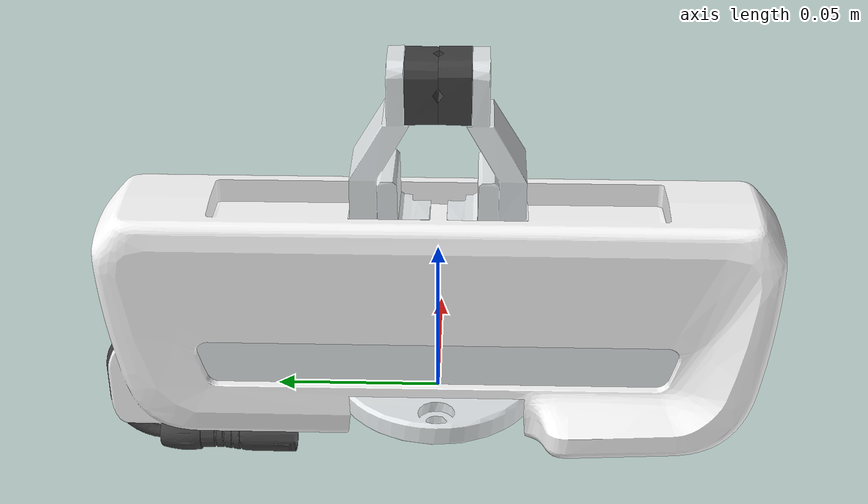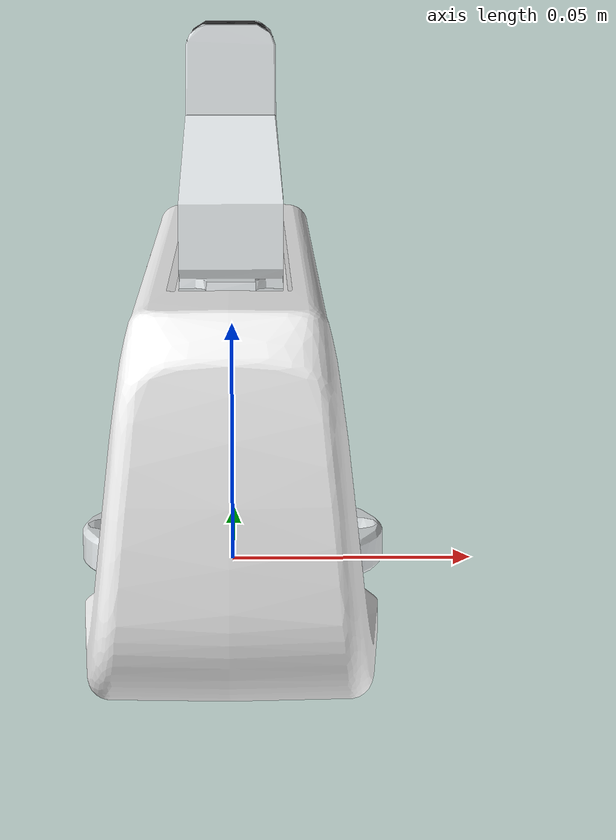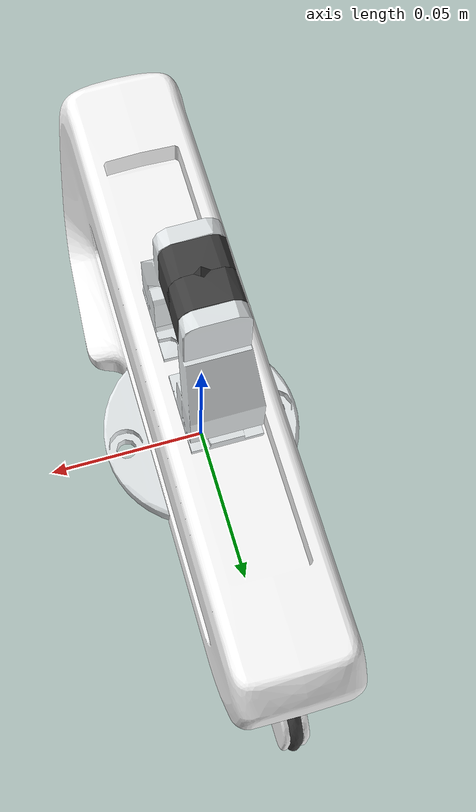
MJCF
<?xml version='1.0' encoding='utf-8'?>
<mujoco model="panda hand">
  <compiler angle="radian" meshdir="assets" autolimits="true" />

  <option integrator="implicitfast" impratio="10" noslip_iterations="3"/>

  <default>
    <default class="panda">
      <material specular="0.5" shininess="0.25" />
      <joint armature="0.1" damping="1" axis="0 0 1" range="-2.8973 2.8973" />
      <general dyntype="none" biastype="affine" ctrlrange="-2.8973 2.8973" forcerange="-87 87" />
      <default class="finger">
        <joint axis="0 1 0" type="slide" range="0 0.04" damping="1.0"/>
      </default>

      <default class="visual">
        <geom type="mesh" contype="0" conaffinity="0" group="2" />
      </default>
      <default class="collision">
        <geom type="mesh" group="3" />
        <default class="fingertip_pad_collision_1">
          <geom type="box" size="0.0085 0.004 0.0085" pos="0 0.0055 0.0445" friction="2.0 0.2 0.01" condim="6"/>
        </default>
        <default class="fingertip_pad_collision_2">
          <geom type="box" size="0.003 0.002 0.003" pos="0.0055 0.002 0.05" friction="2.0 0.2 0.01" condim="6"/>
        </default>
        <default class="fingertip_pad_collision_3">
          <geom type="box" size="0.003 0.002 0.003" pos="-0.0055 0.002 0.05" friction="2.0 0.2 0.01" condim="6" />
        </default>
        <default class="fingertip_pad_collision_4">
          <geom type="box" size="0.003 0.002 0.0035" pos="0.0055 0.002 0.0395" friction="2.0 0.2 0.01" condim="6"/>
        </default>
        <default class="fingertip_pad_collision_5">
          <geom type="box" size="0.003 0.002 0.0035" pos="-0.0055 0.002 0.0395" friction="2.0 0.2 0.01" condim="6" />
        </default>
      </default>
    </default>
  </default>

  <asset>
    <material class="panda" name="white" rgba="1 1 1 1" />
    <material class="panda" name="off_white" rgba="0.901961 0.921569 0.929412 1" />
    <material class="panda" name="black" rgba="0.25 0.25 0.25 1" />

    <mesh name="hand_c" file="hand.stl" />

    <mesh file="hand_0.obj" />
    <mesh file="hand_1.obj" />
    <mesh file="hand_2.obj" />
    <mesh file="hand_3.obj" />
    <mesh file="hand_4.obj" />
    <mesh file="finger_0.obj" />
    <mesh file="finger_1.obj" />
  </asset>

  <worldbody>
    <body name="hand" childclass="panda" quat="0 0 0 1">
      <inertial mass="0.73" pos="-0.01 0 0.03" diaginertia="0.001 0.0025 0.0017" />
      <geom mesh="hand_0" material="off_white" class="visual" />
      <geom mesh="hand_1" material="black" class="visual" />
      <geom mesh="hand_2" material="black" class="visual" />
      <geom mesh="hand_3" material="white" class="visual" />
      <geom mesh="hand_4" material="off_white" class="visual" />
      <geom mesh="hand_c" class="collision" />
      <body name="left_finger" pos="0 0 0.0584">
        <inertial mass="0.015" pos="0 0 0" diaginertia="2.375e-6 2.375e-6 7.5e-7" />
        <joint name="finger_joint1" class="finger" />
        <geom mesh="finger_0" material="off_white" class="visual" />
        <geom mesh="finger_1" material="black" class="visual" />
        <geom mesh="finger_0" class="collision" />
        <geom name="fingertip_pad_collision_left"
        type="box"
        size="0.01 0.002 0.012"
        pos="0 0.002 0.045"
        friction="3.0 0.2 0.01"
        solimp="0.9 0.95 0.001"
        solref="0.002 0.5"
        condim="6"
        group="3" />
      </body>
      <body name="right_finger" pos="0 0 0.0584" quat="0 0 0 1">
        <inertial mass="0.015" pos="0 0 0" diaginertia="2.375e-6 2.375e-6 7.5e-7" />
        <joint name="finger_joint2" class="finger" />
        <geom mesh="finger_0" material="off_white" class="visual" />
        <geom mesh="finger_1" material="black" class="visual" />
        <geom mesh="finger_0" class="collision" />
        <geom name="fingertip_pad_collision_right"
        type="box"
        size="0.01 0.003 0.012"
        pos="0 0.0055 0.045"
        friction="3.0 0.2 0.01"
        solimp="0.9 0.95 0.001"
        solref="0.002 0.5"
        condim="6"
        group="3" />
      </body>
    </body>
  </worldbody>

  <contact>
    <exclude body1="hand" body2="left_finger" />
    <exclude body1="hand" body2="right_finger" />
  </contact>

  <tendon>
    <fixed name="split">
      <joint joint="finger_joint1" coef="0.5" />
      <joint joint="finger_joint2" coef="0.5" />
    </fixed>
  </tendon>

  <equality>
    <joint joint1="finger_joint1" joint2="finger_joint2" solimp="0.95 0.99 0.001" solref="0.005 1" />
  </equality>

  <actuator>

    <general class="panda" name="actuator8" tendon="split" forcerange="-50 50" ctrlrange="0 255" gear="20 0 0 0 0 0"
      gainprm="0.3137254902 0 0" biasprm="0 -100 -10"/>
  </actuator>
</mujoco>
